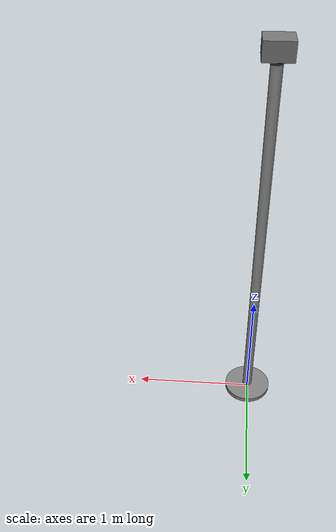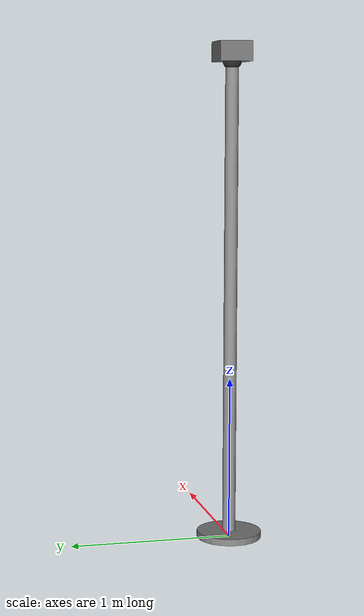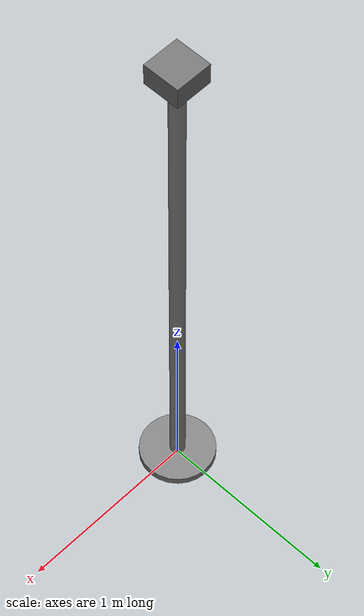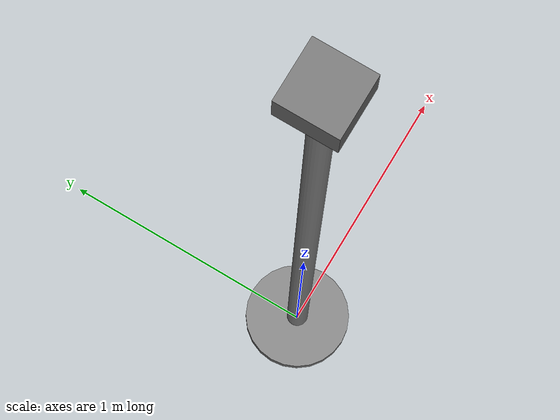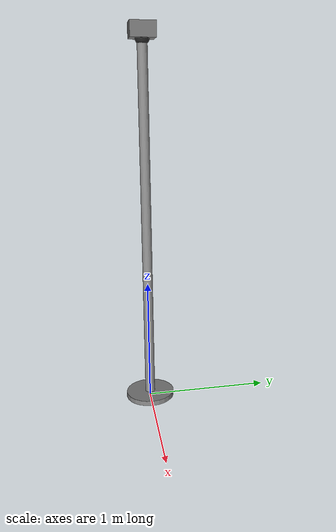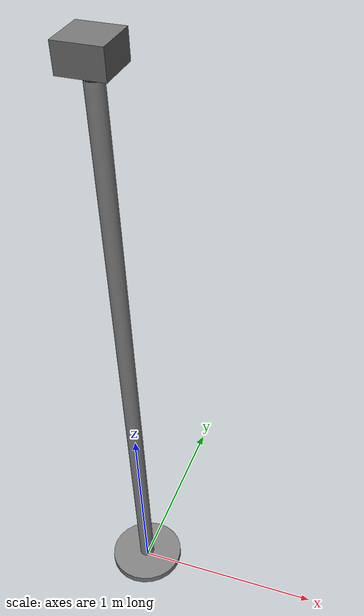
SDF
<?xml version="1.0"?>
<sdf version="1.9">
  <model name="light_tower">
    <static>true</static>

    <link name="body">
      <!-- Tower mast -->
      <visual name="mast_visual">
        <pose>0 0 1.5 0 0 0</pose>
        <geometry>
          <cylinder>
            <radius>0.04</radius>
            <length>3.0</length>
          </cylinder>
        </geometry>
        <material>
          <ambient>0.45 0.45 0.45 1</ambient>
          <diffuse>0.55 0.55 0.55 1</diffuse>
          <specular>0.3 0.3 0.3 1</specular>
        </material>
      </visual>

      <!-- Light housing -->
      <visual name="housing_visual">
        <pose>0 0 3.0 0 0 0</pose>
        <geometry>
          <box><size>0.2 0.2 0.12</size></box>
        </geometry>
        <material>
          <ambient>0.35 0.35 0.35 1</ambient>
          <diffuse>0.45 0.45 0.45 1</diffuse>
        </material>
      </visual>

      <!-- Base plate -->
      <visual name="base_visual">
        <pose>0 0 0.02 0 0 0</pose>
        <geometry>
          <cylinder>
            <radius>0.2</radius>
            <length>0.04</length>
          </cylinder>
        </geometry>
        <material>
          <ambient>0.4 0.4 0.4 1</ambient>
          <diffuse>0.5 0.5 0.5 1</diffuse>
        </material>
      </visual>

      <collision name="collision">
        <pose>0 0 1.5 0 0 0</pose>
        <geometry>
          <cylinder>
            <radius>0.06</radius>
            <length>3.0</length>
          </cylinder>
        </geometry>
      </collision>

      <!-- Tower LED -->
      <visual name="tower_led_visual">
        <pose>0 0 2.95 0 0 0</pose>
        <geometry>
          <sphere><radius>0.06</radius></sphere>
        </geometry>
        <material>
          <ambient>0.2 0.2 0.2 1</ambient>
          <diffuse>0.2 0.2 0.2 1</diffuse>
          <emissive>0 0 0 1</emissive>
        </material>
      </visual>
      <light name="tower_led_light" type="point">
        <pose>0 0 3.05 0 0 0</pose>
        <diffuse>1 1 1 1</diffuse>
        <specular>0 0 0 1</specular>
        <attenuation>
          <range>15</range>
          <constant>1.0</constant>
          <linear>0.05</linear>
          <quadratic>0.02</quadratic>
        </attenuation>
      </light>
    </link>

    <plugin name="tower_led" filename="libLedPlugin.so">
      <led_group_name>tower_light</led_group_name>

      <led name="main">
        <visual_name>body/tower_led_visual</visual_name>
        <light_name>body/tower_led_light</light_name>
        <default_state>
          <color>0.2 0.2 0.2 1</color>
          <intensity>0.0</intensity>
        </default_state>
      </led>

      <mode name="on">
        <step always_on="true">
          <color>1 1 0.95 1</color>
          <intensity>3.0</intensity>
        </step>
      </mode>

      <mode name="emergency">
        <step always_on="false">
          <color>1 0 0 1</color>
          <intensity>3.0</intensity>
          <on_time>0.5</on_time>
        </step>
        <step always_on="false">
          <color>0.2 0 0 1</color>
          <intensity>0.0</intensity>
          <on_time>0.5</on_time>
        </step>
      </mode>
    </plugin>
  </model>
</sdf>
